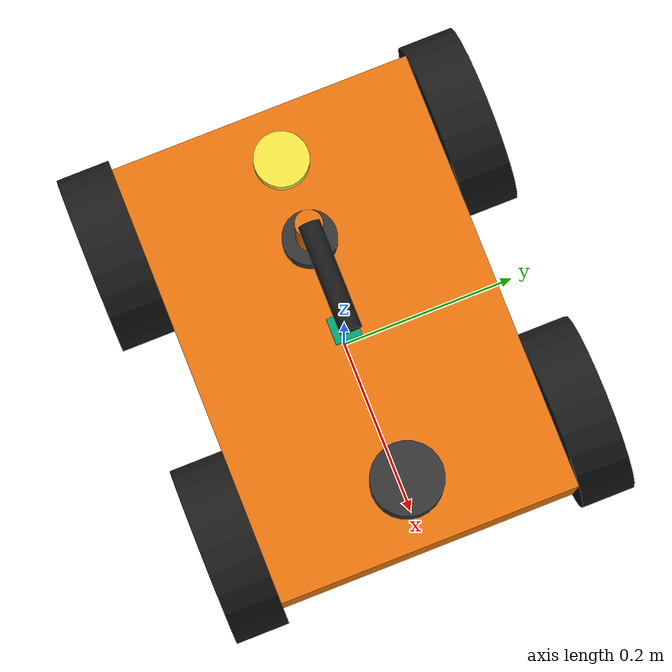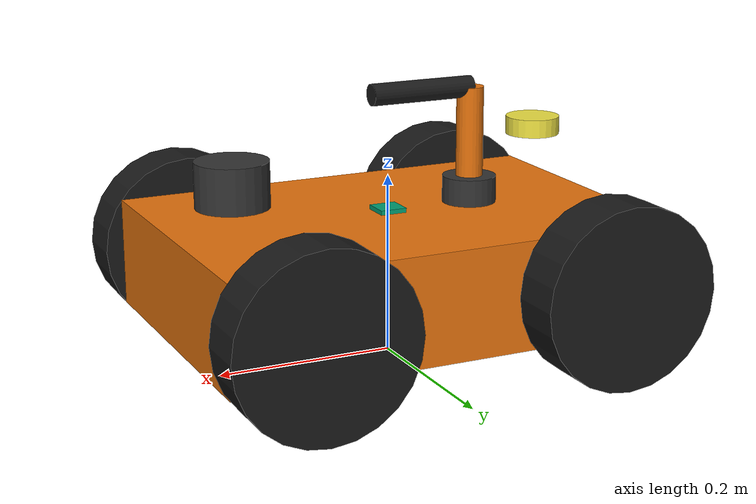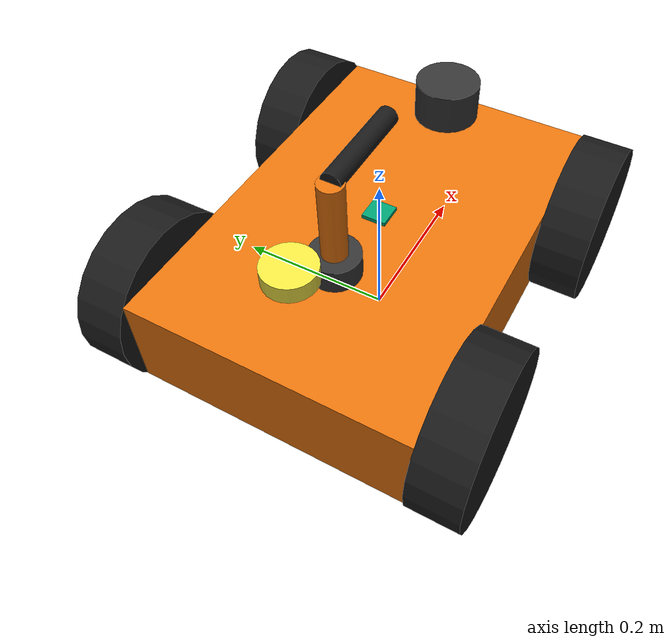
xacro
<?xml version="1.0"?>
<robot xmlns:xacro="http://www.ros.org/wiki/xacro" name="corobo">

  <!-- PARAMETERS -->
  <xacro:property name="base_len"   value="0.50"/>
  <xacro:property name="base_wid"   value="0.34"/>
  <xacro:property name="base_hgt"   value="0.12"/>
  <xacro:property name="base_mass"  value="12.0"/>

  <xacro:property name="wheel_rad"  value="0.10"/>
  <xacro:property name="wheel_wid"  value="0.06"/>
  <xacro:property name="wheel_mass" value="1.2"/>

  <xacro:property name="track"      value="0.40"/>
  <xacro:property name="wheelbase"  value="0.34"/>
  <xacro:property name="base_z"     value="${wheel_rad}"/>

  <xacro:include filename="$(find corobo)/urdf/corobo.gazebo.xacro"/>
  <xacro:include filename="$(find corobo)/urdf/arm.urdf.xacro"/>

  <!-- MACROS -->
  <xacro:macro name="box_inertia" params="m x y z">
    <inertial>
      <mass value="${m}"/>
      <inertia ixx="${m*(y*y+z*z)/12.0}" ixy="0" ixz="0"
               iyy="${m*(x*x+z*z)/12.0}" iyz="0"
               izz="${m*(x*x+y*y)/12.0}"/>
    </inertial>
  </xacro:macro>

  <xacro:macro name="cyl_inertia" params="m r l">
    <inertial>
      <mass value="${m}"/>
      <inertia ixx="${m*(3*r*r+l*l)/12.0}" ixy="0" ixz="0"
               iyy="${m*(3*r*r+l*l)/12.0}" iyz="0"
               izz="${m*r*r/2.0}"/>
    </inertial>
  </xacro:macro>

  <xacro:macro name="wheel" params="prefix x y">
    <link name="${prefix}_wheel">
      <visual>
        <origin xyz="0 0 0" rpy="${pi/2} 0 0"/>
        <geometry><cylinder radius="${wheel_rad}" length="${wheel_wid}"/></geometry>
        <material name="black"><color rgba="0.1 0.1 0.1 1"/></material>
      </visual>
      <collision>
        <origin xyz="0 0 0" rpy="${pi/2} 0 0"/>
        <geometry><cylinder radius="${wheel_rad}" length="${wheel_wid}"/></geometry>
      </collision>
      <xacro:cyl_inertia m="${wheel_mass}" r="${wheel_rad}" l="${wheel_wid}"/>
    </link>

    <joint name="${prefix}_wheel_joint" type="continuous">
      <parent link="base_link"/>
      <child  link="${prefix}_wheel"/>
      <origin xyz="${x} ${y} 0" rpy="0 0 0"/>
      <axis xyz="0 1 0"/>
      <dynamics damping="0.05" friction="0.05"/>
    </joint>
  </xacro:macro>

  <!-- LINKS -->
  <link name="base_footprint"/>

  <link name="base_link">
    <visual>
      <geometry><box size="${base_len} ${base_wid} ${base_hgt}"/></geometry>
      <material name="orange"><color rgba="0.9 0.45 0.05 1"/></material>
    </visual>
    <collision>
      <geometry><box size="${base_len} ${base_wid} ${base_hgt}"/></geometry>
    </collision>
    <xacro:box_inertia m="${base_mass}" x="${base_len}" y="${base_wid}" z="${base_hgt}"/>
  </link>

  <joint name="base_footprint_joint" type="fixed">
    <parent link="base_footprint"/>
    <child  link="base_link"/>
    <origin xyz="0 0 ${base_z}" rpy="0 0 0"/>
  </joint>

  <xacro:wheel prefix="front_left"  x="${ wheelbase/2}" y="${ track/2}"/>
  <xacro:wheel prefix="front_right" x="${ wheelbase/2}" y="${-track/2}"/>
  <xacro:wheel prefix="rear_left"   x="${-wheelbase/2}" y="${ track/2}"/>
  <xacro:wheel prefix="rear_right"  x="${-wheelbase/2}" y="${-track/2}"/>

  <!-- LIDAR -->
  <link name="lidar_link">
    <visual>
      <geometry><cylinder radius="0.04" length="0.05"/></geometry>
      <material name="dgrey"><color rgba="0.2 0.2 0.2 1"/></material>
    </visual>
    <collision><geometry><cylinder radius="0.04" length="0.05"/></geometry></collision>
    <xacro:cyl_inertia m="0.15" r="0.04" l="0.05"/>
  </link>
  <joint name="lidar_joint" type="fixed">
    <parent link="base_link"/>
    <child  link="lidar_link"/>
    <origin xyz="0.18 0 ${base_hgt/2 + 0.05}" rpy="0 0 0"/>
  </joint>

  <!-- IMU -->
  <link name="imu_link">
    <visual><geometry><box size="0.03 0.03 0.01"/></geometry></visual>
    <xacro:box_inertia m="0.02" x="0.03" y="0.03" z="0.01"/>
  </link>
  <joint name="imu_joint" type="fixed">
    <parent link="base_link"/>
    <child  link="imu_link"/>
    <origin xyz="0 0 ${base_hgt/2}" rpy="0 0 0"/>
  </joint>

  <!-- GPS -->
  <link name="gps_link">
    <visual><geometry><cylinder radius="0.03" length="0.02"/></geometry></visual>
    <xacro:box_inertia m="0.05" x="0.06" y="0.06" z="0.02"/>
  </link>
  <joint name="gps_joint" type="fixed">
    <parent link="base_link"/>
    <child  link="gps_link"/>
    <origin xyz="-0.18 0 ${base_hgt/2 + 0.08}" rpy="0 0 0"/>
  </joint>

</robot>

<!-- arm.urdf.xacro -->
<robot xmlns:xacro="http://www.ros.org/wiki/xacro">

<link name="arm_base_link">
  <visual>
    <geometry><cylinder radius="0.03" length="0.03"/></geometry>
    <material name="dgrey"><color rgba="0.2 0.2 0.2 1"/></material>
  </visual>
  <inertial>
    <mass value="0.10"/>
    <inertia ixx="0.00002" ixy="0" ixz="0" iyy="0.00002" iyz="0" izz="0.00002"/>
  </inertial>
</link>

<joint name="arm_mount_joint" type="fixed">
  <parent link="base_link"/>
  <child  link="arm_base_link"/>
  <origin xyz="-0.10 0 ${base_hgt/2 + 0.015}" rpy="0 0 0"/>
</joint>

<link name="arm_link1">
  <visual>
    <origin xyz="0 0 0.05" rpy="0 0 0"/>
    <geometry><cylinder radius="0.015" length="0.10"/></geometry>
    <material name="orange"><color rgba="0.9 0.45 0.05 1"/></material>
  </visual>
  <inertial>
    <mass value="0.08"/>
    <inertia ixx="0.00002" ixy="0" ixz="0" iyy="0.00002" iyz="0" izz="0.00001"/>
  </inertial>
</link>

<joint name="base_joint" type="continuous">
  <parent link="arm_base_link"/>
  <child  link="arm_link1"/>
  <origin xyz="0 0 0.015" rpy="0 0 0"/>
  <axis xyz="0 0 1"/>
  <dynamics damping="0.02" friction="0.01"/>
</joint>

<link name="arm_link2">
  <visual>
    <origin xyz="0.06 0 0" rpy="0 1.5708 0"/>
    <geometry><cylinder radius="0.012" length="0.12"/></geometry>
    <material name="black"><color rgba="0.1 0.1 0.1 1"/></material>
  </visual>
  <inertial>
    <mass value="0.06"/>
    <inertia ixx="0.00001" ixy="0" ixz="0" iyy="0.00001" iyz="0" izz="0.00001"/>
  </inertial>
</link>

<joint name="elbow_joint" type="continuous">
  <parent link="arm_link1"/>
  <child  link="arm_link2"/>
  <origin xyz="0 0 0.10" rpy="0 0 0"/>
  <axis xyz="0 1 0"/>
  <dynamics damping="0.02" friction="0.01"/>
</joint>
</robot>
